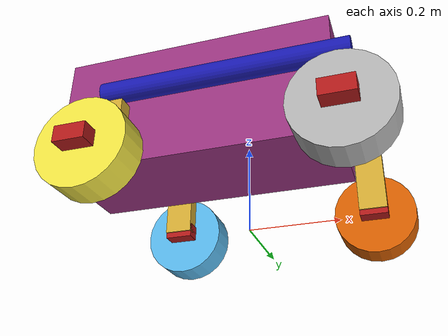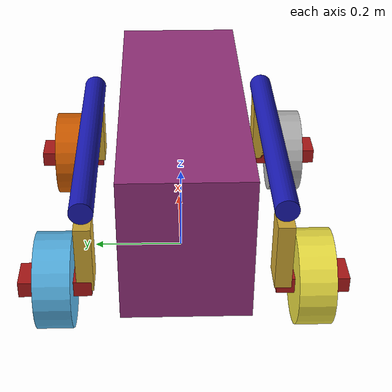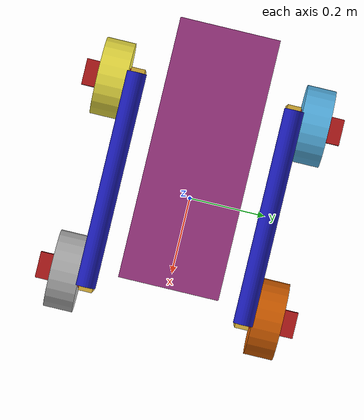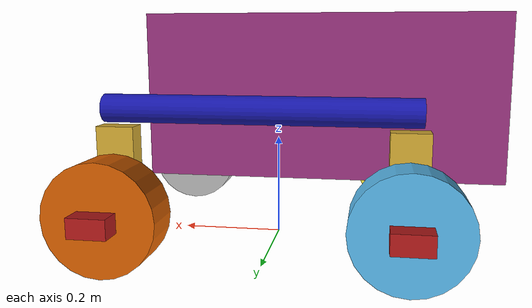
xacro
<?xml version="1.0"?>
<robot name="lunabot" xmlns:xacro="http://www.ros.org/wiki/xacro">

  <xacro:property name="deg180" value="3.14159265"/>
  <xacro:property name="deg90" value="1.5707963"/>

  <!-- BASE ROCKER Transform -->
  <xacro:property name="brx" value="0"/>
  <xacro:property name="bry" value="0.126975"/>
  <xacro:property name="brz" value="0.229093"/>

  <!-- ROCKER KNUCKLE Transform -->
  <xacro:property name="rkx" value="0.254"/>
  <xacro:property name="rky" value="0.019"/>
  <xacro:property name="rkz" value="0.139725"/>

  <!-- KNUCKLE WHEEL Transform -->
  <xacro:property name="kwx" value="0"/>
  <xacro:property name="kwy" value="-0.038135"/>
  <xacro:property name="kwz" value="-0.146383"/>

  <!-- BUCKET Dimensions -->
  <xacro:property name="buck_sx" value="0.65"/>
  <xacro:property name="buck_sy" value="0.25"/>
  <xacro:property name="buck_sz" value="0.30"/>

  <xacro:property name="buck_px" value="-0.1"/>
  <xacro:property name="buck_py" value="0"/>
  <xacro:property name="buck_pz" value="0.295"/>

  <!-- Rocker Dimensions -->
  <xacro:property name="rock_rad" value="0.025"/>
  <xacro:property name="rock_len" value="0.55"/>

  <xacro:property name="rock_px" value="0"/>
  <xacro:property name="rock_py" value="0.05"/>
  <xacro:property name="rock_pz" value="0.075"/>

  <xacro:property name="rock_rx" value="0"/>
  <xacro:property name="rock_ry" value="${deg90}"/>
  <xacro:property name="rock_rz" value="0"/>

  <!-- KNUCKLE Dimensions -->
  <xacro:property name="nuck_sx" value="0.0675"/>
  <xacro:property name="nuck_sy" value="0.035"/>
  <xacro:property name="nuck_sz" value="0.15"/>

  <xacro:property name="nuck_px" value="0"/>
  <xacro:property name="nuck_py" value="-0.065"/>
  <xacro:property name="nuck_pz" value="-0.075"/>

  <!-- WHEEL Dimensions -->
  <xacro:property name="whee_rad" value="0.1"/>
  <xacro:property name="whee_len" value="0.075"/>

  <xacro:property name="whee_px" value="0"/>
  <xacro:property name="whee_py" value="0"/>
  <xacro:property name="whee_pz" value="0.035"/>

  <!-- MATERIALS -->
  <material name="grey">
    <color rgba="0.7 0.7 0.7 1"/>
  </material>

  <material name="green">
    <color rgba="0.6 0.2 0.5 1"/>
  </material>

  <material name="blue">
    <color rgba="0.1 0.1 0.7 1"/>
  </material>

  <material name="red">
    <color rgba="0.7 0.1 0.1 1"/>
  </material>

  <material name="gold">
    <color rgba="0.83 0.67 0.2 1"/>
  </material>

  <!-- BASE LINK -->
  <link name="base_link">
    <inertial>
      <mass value="1.0"/>
      <origin xyz="0 0 0" rpy="0 0 0"/>
      <inertia ixx="0.01" ixy="0" ixz="0" iyy="0.01" iyz="0" izz="0.01"/>
    </inertial>
  </link>

  <!-- BUCKET -->
  <link name="bucket">
    <visual>
      <geometry>
        <box size="${buck_sx} ${buck_sy} ${buck_sz}"/>
      </geometry>
      <origin xyz="${buck_px} ${buck_py} ${buck_pz}" rpy="0 0 0"/>
      <material name="green"/>
    </visual>
    <collision>
      <geometry>
        <box size="${buck_sx} ${buck_sy} ${buck_sz}"/>
      </geometry>
      <origin xyz="${buck_px} ${buck_py} ${buck_pz}" rpy="0 0 0"/>
    </collision>
    <inertial>
      <mass value="15"/>
      <origin xyz="0 0 0" rpy="0 0 0"/>
      <inertia ixx="0.9" ixy="0" ixz="0" iyy="0.4" iyz="0" izz="0.9"/>
    </inertial>
  </link>

  <!-- BUCKET JOINT -->
  <joint name="bucket_joint" type="fixed">
    <parent link="base_link"/>
    <child link="bucket"/>
    <origin xyz="0 0 0" rpy="0 0 0"/>
  </joint>

  <!-- LEFT ROCKER -->
  <link name="left_rocker">
    <visual>
      <geometry>
        <cylinder radius="${rock_rad}" length="${rock_len}"/>
      </geometry>
      <origin xyz="${rock_px} ${rock_py} ${rock_pz}" rpy="${rock_rx} ${rock_ry} ${rock_rz}"/>
      <material name="blue"/>
    </visual>
    <collision>
      <geometry>
        <cylinder radius="${rock_rad}" length="${rock_len}"/>
      </geometry>
      <origin xyz="${rock_px} ${rock_py} ${rock_pz}" rpy="${rock_rx} ${rock_ry} ${rock_rz}"/>
    </collision>
    <inertial>
      <mass value="5"/>
      <origin xyz="${rock_px} ${rock_py} ${rock_pz}" rpy="${rock_rx} ${rock_ry} ${rock_rz}"/>
      <inertia ixx="0.01" ixy="0" ixz="0" iyy="0.01" iyz="0" izz="0.01"/>
    </inertial>
  </link>

  <!-- LEFT ROCKER JOINT -->
  <joint name="left_rocker_joint" type="fixed">
    <parent link="bucket"/>
    <child link="left_rocker"/>
    <origin xyz="${brx} ${bry} ${brz}" rpy="-${deg90} ${deg180} 0"/>
  </joint>

  <!-- RIGHT ROCKER -->
  <link name="right_rocker">
    <visual>
      <geometry>
        <cylinder radius="${rock_rad}" length="${rock_len}"/>
      </geometry>
      <origin xyz="${rock_px} ${rock_py} ${rock_pz}" rpy="${rock_rx} ${rock_ry} ${rock_rz}"/>
      <material name="blue"/>
    </visual>
    <collision>
      <geometry>
        <cylinder radius="${rock_rad}" length="${rock_len}"/>
      </geometry>
      <origin xyz="${rock_px} ${rock_py} ${rock_pz}" rpy="${rock_rx} ${rock_ry} ${rock_rz}"/>
    </collision>
    <inertial>
      <mass value="5"/>
      <origin xyz="${rock_px} ${rock_py} ${rock_pz}" rpy="${rock_rx} ${rock_ry} ${rock_rz}"/>
      <inertia ixx="0.01" ixy="0" ixz="0" iyy="0.01" iyz="0" izz="0.01"/>
    </inertial>
  </link>

  <!-- RIGHT ROCKER JOINT -->
  <joint name="right_rocker_joint" type="fixed">
    <parent link="bucket"/>
    <child link="right_rocker"/>
    <origin xyz="${brx} -${bry} ${brz}" rpy="${deg90} 0 0"/>
  </joint>

  <!-- FRONT LEFT WHEEL POD -->
  <!-- FRONT LEFT KNUCKLE -->
  <link name="front_left_knuckle">
    <visual>
      <geometry>
        <box size="${nuck_sx} ${nuck_sy} ${nuck_sz}"/>
      </geometry>
      <origin xyz="${nuck_px} ${nuck_py} ${nuck_pz}" rpy="0 0 0"/>
      <material name="gold"/>
    </visual>
    <collision>
      <geometry>
        <box size="${nuck_sx} ${nuck_sy} ${nuck_sz}"/>
      </geometry>
      <origin xyz="${nuck_px} ${nuck_py} ${nuck_pz}" rpy="0 0 0"/>
    </collision>
    <inertial>
      <mass value="2.0"/>
      <origin xyz="${nuck_px} ${nuck_py} ${nuck_pz}" rpy="0 0 0"/>
      <inertia ixx="0.01" ixy="0" ixz="0" iyy="0.01" iyz="0" izz="0.01"/>
    </inertial>
  </link>

  <!-- FRONT LEFT STEER JOINT -->
  <joint name="front_left_steer_joint" type="revolute">
    <limit lower="-1.658" upper="1.658" effort="10.0" velocity="2.0"/>
    <parent link="left_rocker"/>
    <child link="front_left_knuckle"/>
    <origin xyz="-${rkx} ${rky} ${rkz}" rpy="-${deg90} ${deg180} 0"/>
    <axis xyz="0 0 1"/>
  </joint>

  <!-- FRONT LEFT WHEEL -->
  <link name="front_left_wheel">
    <visual>
      <geometry>
        <cylinder radius="${whee_rad}" length="${whee_len}"/>
      </geometry>
      <origin xyz="${whee_px} ${whee_py} ${whee_pz}" rpy="0 0 0"/>
    </visual>
    <visual>
      <geometry>
        <box size="${nuck_sx} ${nuck_sy} ${nuck_sz}"/>
      </geometry>
      <origin xyz="${whee_px} ${whee_py} ${whee_pz}" rpy="0 0 0"/>
      <material name="red"/>
    </visual>
    <collision>
      <geometry>
        <cylinder radius="${whee_rad}" length="${whee_len}"/>
      </geometry>
      <origin xyz="${whee_px} ${whee_py} ${whee_pz}" rpy="0 0 0"/>
    </collision>
    <inertial>
      <mass value="2.0"/>
      <origin xyz="${whee_px} ${whee_py} ${whee_pz}" rpy="0 0 0"/>
      <inertia ixx="0.01" ixy="0" ixz="0" iyy="0.01" iyz="0" izz="0.01"/>
    </inertial>
    <gazebo reference="front_left_wheel">
      <mu1>0.9</mu1>
      <mu2>0.9</mu2>
      <kp>100000</kp>
      <kd>1</kd>
      <fdir1>1 0 0</fdir1>
      <rolling_friction>0.02</rolling_friction>
      <spinning_friction>0.02</spinning_friction>
    </gazebo>
  </link>

  <!-- FRONT LEFT DRIVE JOINT -->
  <joint name="front_left_drive_joint" type="continuous">
    <parent link="front_left_knuckle"/>
    <child link="front_left_wheel"/>
    <origin xyz="${kwx} ${kwy} ${kwz}" rpy="${deg90} 0 ${deg180}"/>
    <axis xyz="0 0 1"/>
  </joint>

  <!-- FRONT RIGHT WHEEL POD -->
  <!-- FRONT RIGHT KNUCKLE -->
  <link name="front_right_knuckle">
    <visual>
      <geometry>
        <box size="${nuck_sx} ${nuck_sy} ${nuck_sz}"/>
      </geometry>
      <origin xyz="${nuck_px} ${nuck_py} ${nuck_pz}" rpy="0 0 0"/>
      <material name="gold"/>
    </visual>
    <collision>
      <geometry>
        <box size="${nuck_sx} ${nuck_sy} ${nuck_sz}"/>
      </geometry>
      <origin xyz="${nuck_px} ${nuck_py} ${nuck_pz}" rpy="0 0 0"/>
    </collision>
    <inertial>
      <mass value="2.0"/>
      <origin xyz="${nuck_px} ${nuck_py} ${nuck_pz}" rpy="0 0 0"/>
      <inertia ixx="0.01" ixy="0" ixz="0" iyy="0.01" iyz="0" izz="0.01"/>
    </inertial>
  </link>

  <!-- FRONT RIGHT STEER JOINT -->
  <joint name="front_right_steer_joint" type="revolute">
    <limit lower="-1.658" upper="1.658" effort="10.0" velocity="2.0"/>
    <parent link="right_rocker"/>
    <child link="front_right_knuckle"/>
    <origin xyz="${rkx} ${rky} ${rkz}" rpy="${deg90} 0 ${deg180}"/>
    <axis xyz="0 0 1"/>
  </joint>

  <!-- FRONT RIGHT WHEEL -->
  <link name="front_right_wheel">
    <visual>
      <geometry>
        <cylinder radius="${whee_rad}" length="${whee_len}"/>
      </geometry>
      <origin xyz="${whee_px} ${whee_py} ${whee_pz}" rpy="0 0 0"/>
    </visual>
    <visual>
      <geometry>
        <box size="${nuck_sx} ${nuck_sy} ${nuck_sz}"/>
      </geometry>
      <origin xyz="${whee_px} ${whee_py} ${whee_pz}" rpy="0 0 0"/>
      <material name="red"/>
    </visual>
    <collision>
      <geometry>
        <cylinder radius="${whee_rad}" length="${whee_len}"/>
      </geometry>
      <origin xyz="${whee_px} ${whee_py} ${whee_pz}" rpy="0 0 0"/>
    </collision>
    <inertial>
      <mass value="2.0"/>
      <origin xyz="${whee_px} ${whee_py} ${whee_pz}" rpy="0 0 0"/>
      <inertia ixx="0.01" ixy="0" ixz="0" iyy="0.01" iyz="0" izz="0.01"/>
    </inertial>
    <gazebo reference="front_right_wheel">
      <mu1>0.9</mu1>
      <mu2>0.9</mu2>
      <kp>100000</kp>
      <kd>1</kd>
      <fdir1>1 0 0</fdir1>
      <rolling_friction>0.02</rolling_friction>
      <spinning_friction>0.02</spinning_friction>
    </gazebo>
  </link>

  <!-- FRONT RIGHT DRIVE JOINT -->
  <joint name="front_right_drive_joint" type="continuous">
    <parent link="front_right_knuckle"/>
    <child link="front_right_wheel"/>
    <origin xyz="${kwx} ${kwy} ${kwz}" rpy="${deg90} 0 ${deg180}"/>
    <axis xyz="0 0 -1"/>
  </joint>

  <!-- BACK LEFT WHEEL POD -->
  <!-- BACK LEFT KNUCKLE -->
  <link name="back_left_knuckle">
    <visual>
      <geometry>
        <box size="${nuck_sx} ${nuck_sy} ${nuck_sz}"/>
      </geometry>
      <origin xyz="${nuck_px} ${nuck_py} ${nuck_pz}" rpy="0 0 0"/>
      <material name="gold"/>
    </visual>
    <collision>
      <geometry>
        <box size="${nuck_sx} ${nuck_sy} ${nuck_sz}"/>
      </geometry>
      <origin xyz="${nuck_px} ${nuck_py} ${nuck_pz}" rpy="0 0 0"/>
    </collision>
    <inertial>
      <mass value="2.0"/>
      <origin xyz="${nuck_px} ${nuck_py} ${nuck_pz}" rpy="0 0 0"/>
      <inertia ixx="0.01" ixy="0" ixz="0" iyy="0.01" iyz="0" izz="0.01"/>
    </inertial>
  </link>

  <!-- BACK LEFT STEER JOINT -->
  <joint name="back_left_steer_joint" type="revolute">
    <limit lower="-1.658" upper="1.658" effort="10.0" velocity="2.0"/>
    <parent link="left_rocker"/>
    <child link="back_left_knuckle"/>
    <origin xyz="${rkx} ${rky} ${rkz}" rpy="${deg90} 0 ${deg180}"/>
    <axis xyz="0 0 1"/>
  </joint>

    <!-- BACK LEFT WHEEL -->
  <link name="back_left_wheel">
    <visual>
      <geometry>
        <cylinder radius="${whee_rad}" length="${whee_len}"/>
      </geometry>
      <origin xyz="${whee_px} ${whee_py} ${whee_pz}" rpy="0 0 0"/>
    </visual>
    <visual>
      <geometry>
        <box size="${nuck_sx} ${nuck_sy} ${nuck_sz}"/>
      </geometry>
      <origin xyz="${whee_px} ${whee_py} ${whee_pz}" rpy="0 0 0"/>
      <material name="red"/>
    </visual>
    <collision>
      <geometry>
        <cylinder radius="${whee_rad}" length="${whee_len}"/>
      </geometry>
      <origin xyz="${whee_px} ${whee_py} ${whee_pz}" rpy="0 0 0"/>
    </collision>
    <inertial>
      <mass value="2.0"/>
      <origin xyz="${whee_px} ${whee_py} ${whee_pz}" rpy="0 0 0"/>
      <inertia ixx="0.01" ixy="0" ixz="0" iyy="0.01" iyz="0" izz="0.01"/>
    </inertial>
    <gazebo reference="back_left_wheel">
      <mu1>0.9</mu1>
      <mu2>0.9</mu2>
      <kp>100000</kp>
      <kd>1</kd>
      <fdir1>1 0 0</fdir1>
      <rolling_friction>0.02</rolling_friction>
      <spinning_friction>0.02</spinning_friction>
    </gazebo>
  </link>

  <!-- BACK LEFT DRIVE JOINT -->
  <joint name="back_left_drive_joint" type="continuous">
    <parent link="back_left_knuckle"/>
    <child link="back_left_wheel"/>
    <origin xyz="${kwx} ${kwy} ${kwz}" rpy="${deg90} 0 ${deg180}"/>
    <axis xyz="0 0 1"/>
  </joint>

  <!-- BACK RIGHT WHEEL POD -->
  <!-- BACK RIGHT KNUCKLE -->
  <link name="back_right_knuckle">
    <visual>
      <geometry>
        <box size="${nuck_sx} ${nuck_sy} ${nuck_sz}"/>
      </geometry>
      <origin xyz="${nuck_px} ${nuck_py} ${nuck_pz}" rpy="0 0 0"/>
      <material name="gold"/>
    </visual>
    <collision>
      <geometry>
        <box size="${nuck_sx} ${nuck_sy} ${nuck_sz}"/>
      </geometry>
      <origin xyz="${nuck_px} ${nuck_py} ${nuck_pz}" rpy="0 0 0"/>
    </collision>
    <inertial>
      <mass value="2.0"/>
      <origin xyz="${nuck_px} ${nuck_py} ${nuck_pz}" rpy="0 0 0"/>
      <inertia ixx="0.01" ixy="0" ixz="0" iyy="0.01" iyz="0" izz="0.01"/>
    </inertial>
  </link>

  <!-- BACK RIGHT STEER JOINT -->
  <joint name="back_right_steer_joint" type="revolute">
    <limit lower="-1.658" upper="1.658" effort="10.0" velocity="2.0"/>
    <parent link="right_rocker"/>
    <child link="back_right_knuckle"/>
    <origin xyz="-${rkx} ${rky} ${rkz}" rpy="${deg90} 0 ${deg180}"/>
    <axis xyz="0 0 1"/>
  </joint>

  <!-- BACK RIGHT WHEEL -->
  <link name="back_right_wheel">
    <visual>
      <geometry>
        <cylinder radius="${whee_rad}" length="${whee_len}"/>
      </geometry>
      <origin xyz="${whee_px} ${whee_py} ${whee_pz}" rpy="0 0 0"/>
    </visual>
    <visual>
      <geometry>
        <box size="${nuck_sx} ${nuck_sy} ${nuck_sz}"/>
      </geometry>
      <origin xyz="${whee_px} ${whee_py} ${whee_pz}" rpy="0 0 0"/>
      <material name="red"/>
    </visual>
    <collision>
      <geometry>
        <cylinder radius="${whee_rad}" length="${whee_len}"/>
      </geometry>
      <origin xyz="${whee_px} ${whee_py} ${whee_pz}" rpy="0 0 0"/>
    </collision>
    <inertial>
      <mass value="2.0"/>
      <origin xyz="${whee_px} ${whee_py} ${whee_pz}" rpy="0 0 0"/>
      <inertia ixx="0.01" ixy="0" ixz="0" iyy="0.01" iyz="0" izz="0.01"/>
    </inertial>
    <gazebo reference="back_right_wheel">
      <mu1>0.9</mu1>
      <mu2>0.9</mu2>
      <kp>100000</kp>
      <kd>1</kd>
      <fdir1>1 0 0</fdir1>
      <rolling_friction>0.02</rolling_friction>
      <spinning_friction>0.02</spinning_friction>
    </gazebo>
  </link>

  <!-- BACK RIGHT DRIVE JOINT -->
  <joint name="back_right_drive_joint" type="continuous">
    <parent link="back_right_knuckle"/>
    <child link="back_right_wheel"/>
    <origin xyz="${kwx} ${kwy} ${kwz}" rpy="${deg90} 0 ${deg180}"/>
    <axis xyz="0 0 -1"/>
  </joint>
</robot>
